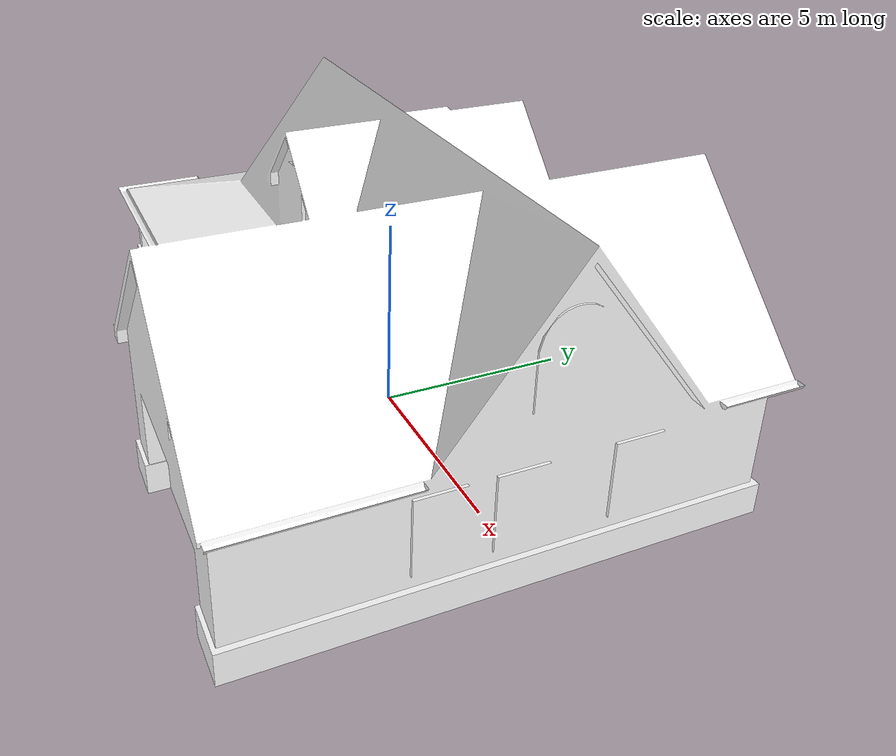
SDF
<?xml version="1.0" ?>
<sdf version="1.5">
  <model name="House 1">
    <static>true</static>
    <link name="link">
      <collision name="collision">
        <geometry>
          <mesh>
            <uri>model://house_1/meshes/house_1.dae</uri>
            <scale>1.5 1.5 1.5</scale>
          </mesh>
        </geometry>
      </collision>
      <visual name="visual">
        <geometry>
          <mesh>
            <uri>model://house_1/meshes/house_1.dae</uri>
            <scale>1.5 1.5 1.5</scale>
          </mesh>
        </geometry>
        <material>
          <script>
            <uri>model://house_1/materials/scripts</uri>
            <uri>model://house_1/materials/textures</uri>
            <name>House_1/Diffuse</name>
          </script>
        </material>
      </visual>
    </link>
  </model>
</sdf>
